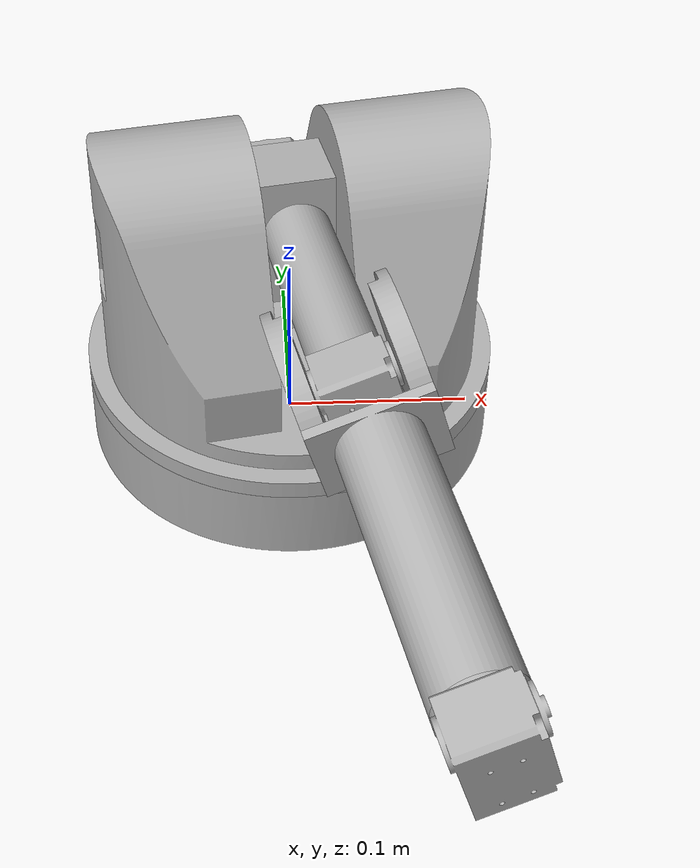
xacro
<?xml version="1.0" ?>
<robot name="test_assembly3" xmlns:xacro="http://www.ros.org/wiki/xacro">

<xacro:include filename="$(find test_assembly3_description)/urdf/materials.xacro" />
<xacro:include filename="$(find test_assembly3_description)/urdf/test_assembly3.trans" />
<xacro:include filename="$(find test_assembly3_description)/urdf/test_assembly3.gazebo" />
<link name="base_link">
  <inertial>
    <origin xyz="-0.00040810804018468253 -3.552713678800501e-17 0.016706580181223032" rpy="0 0 0"/>
    <mass value="6.935188631739772"/>
    <inertia ixx="0.028142" iyy="0.028238" izz="0.054243" ixy="-0.0" iyz="-0.0" ixz="2.5e-05"/>
  </inertial>
  <visual>
    <origin xyz="0 0 0" rpy="0 0 0"/>
    <geometry>
      <mesh filename="package://test_assembly3_description/meshes/base_link.stl" scale="0.001 0.001 0.001"/>
    </geometry>
    <material name="silver"/>
  </visual>
  <collision>
    <origin xyz="0 0 0" rpy="0 0 0"/>
    <geometry>
      <mesh filename="package://test_assembly3_description/meshes/base_link.stl" scale="0.001 0.001 0.001"/>
    </geometry>
  </collision>
</link>

<link name="motor_base_1">
  <inertial>
    <origin xyz="-0.011944616237443872 -1.1102230246251566e-17 0.016403799171755752" rpy="0 0 0"/>
    <mass value="0.343534365338019"/>
    <inertia ixx="5.5e-05" iyy="9.2e-05" izz="8.2e-05" ixy="-0.0" iyz="0.0" ixz="2e-06"/>
  </inertial>
  <visual>
    <origin xyz="0.0 0.0 -0.015" rpy="0 0 0"/>
    <geometry>
      <mesh filename="package://test_assembly3_description/meshes/motor_base_1.stl" scale="0.001 0.001 0.001"/>
    </geometry>
    <material name="silver"/>
  </visual>
  <collision>
    <origin xyz="0.0 0.0 -0.015" rpy="0 0 0"/>
    <geometry>
      <mesh filename="package://test_assembly3_description/meshes/motor_base_1.stl" scale="0.001 0.001 0.001"/>
    </geometry>
  </collision>
</link>

<link name="base_upperplate_1">
  <inertial>
    <origin xyz="-1.6172448750803435e-16 -3.676205142934621e-17 0.004999999999999949" rpy="0 0 0"/>
    <mass value="1.9420933085410403"/>
    <inertia ixx="0.007942" iyy="0.007942" izz="0.015852" ixy="-0.0" iyz="0.0" ixz="0.0"/>
  </inertial>
  <visual>
    <origin xyz="0.0 0.0 -0.041" rpy="0 0 0"/>
    <geometry>
      <mesh filename="package://test_assembly3_description/meshes/base_upperplate_1.stl" scale="0.001 0.001 0.001"/>
    </geometry>
    <material name="silver"/>
  </visual>
  <collision>
    <origin xyz="0.0 0.0 -0.041" rpy="0 0 0"/>
    <geometry>
      <mesh filename="package://test_assembly3_description/meshes/base_upperplate_1.stl" scale="0.001 0.001 0.001"/>
    </geometry>
  </collision>
</link>

<link name="motor_horn_base_1">
  <inertial>
    <origin xyz="3.138091383686708e-14 5.3428299048114016e-15 0.0019561696415957355" rpy="0 0 0"/>
    <mass value="0.009818206481012393"/>
    <inertia ixx="0.0" iyy="0.0" izz="0.0" ixy="-0.0" iyz="-0.0" ixz="-0.0"/>
  </inertial>
  <visual>
    <origin xyz="0.0 0.0 -0.0475" rpy="0 0 0"/>
    <geometry>
      <mesh filename="package://test_assembly3_description/meshes/motor_horn_base_1.stl" scale="0.001 0.001 0.001"/>
    </geometry>
    <material name="silver"/>
  </visual>
  <collision>
    <origin xyz="0.0 0.0 -0.0475" rpy="0 0 0"/>
    <geometry>
      <mesh filename="package://test_assembly3_description/meshes/motor_horn_base_1.stl" scale="0.001 0.001 0.001"/>
    </geometry>
  </collision>
</link>

<link name="link1_1">
  <inertial>
    <origin xyz="0.0025732999778083376 0.0004387244111267232 0.056987216077853876" rpy="0 0 0"/>
    <mass value="18.830511805272366"/>
    <inertia ixx="0.058102" iyy="0.093565" izz="0.09509" ixy="-0.006227" iyz="-0.00017" ixz="-0.000995"/>
  </inertial>
  <visual>
    <origin xyz="0.0 0.0 -0.051" rpy="0 0 0"/>
    <geometry>
      <mesh filename="package://test_assembly3_description/meshes/link1_1.stl" scale="0.001 0.001 0.001"/>
    </geometry>
    <material name="silver"/>
  </visual>
  <collision>
    <origin xyz="0.0 0.0 -0.051" rpy="0 0 0"/>
    <geometry>
      <mesh filename="package://test_assembly3_description/meshes/link1_1.stl" scale="0.001 0.001 0.001"/>
    </geometry>
  </collision>
</link>

<link name="motor_fix_link1_1">
  <inertial>
    <origin xyz="0.00030684703129734217 0.012479258727237364 -0.028250000006648762" rpy="0 0 0"/>
    <mass value="0.0746710896046194"/>
    <inertia ixx="5.7e-05" iyy="3.7e-05" izz="2.1e-05" ixy="3e-06" iyz="-0.0" ixz="0.0"/>
  </inertial>
  <visual>
    <origin xyz="0.023374 0.016412 -0.15725" rpy="0 0 0"/>
    <geometry>
      <mesh filename="package://test_assembly3_description/meshes/motor_fix_link1_1.stl" scale="0.001 0.001 0.001"/>
    </geometry>
    <material name="silver"/>
  </visual>
  <collision>
    <origin xyz="0.023374 0.016412 -0.15725" rpy="0 0 0"/>
    <geometry>
      <mesh filename="package://test_assembly3_description/meshes/motor_fix_link1_1.stl" scale="0.001 0.001 0.001"/>
    </geometry>
  </collision>
</link>

<link name="motor_link1_1">
  <inertial>
    <origin xyz="-0.01643475104619082 0.008357164343897322 -0.019944616237441898" rpy="0 0 0"/>
    <mass value="0.343534365338019"/>
    <inertia ixx="8.2e-05" iyy="9.2e-05" izz="5.5e-05" ixy="-2e-06" iyz="0.0" ixz="2e-06"/>
  </inertial>
  <visual>
    <origin xyz="0.023584 0.01518 -0.149" rpy="0 0 0"/>
    <geometry>
      <mesh filename="package://test_assembly3_description/meshes/motor_link1_1.stl" scale="0.001 0.001 0.001"/>
    </geometry>
    <material name="silver"/>
  </visual>
  <collision>
    <origin xyz="0.023584 0.01518 -0.149" rpy="0 0 0"/>
    <geometry>
      <mesh filename="package://test_assembly3_description/meshes/motor_link1_1.stl" scale="0.001 0.001 0.001"/>
    </geometry>
  </collision>
</link>

<link name="motor_horn_link1_1">
  <inertial>
    <origin xyz="0.001928838316534058 0.00032915162363787026 -2.9781732635569824e-14" rpy="0 0 0"/>
    <mass value="0.009818206481012393"/>
    <inertia ixx="0.0" iyy="0.0" izz="0.0" ixy="0.0" iyz="-0.0" ixz="0.0"/>
  </inertial>
  <visual>
    <origin xyz="0.024152 0.004118 -0.141" rpy="0 0 0"/>
    <geometry>
      <mesh filename="package://test_assembly3_description/meshes/motor_horn_link1_1.stl" scale="0.001 0.001 0.001"/>
    </geometry>
    <material name="silver"/>
  </visual>
  <collision>
    <origin xyz="0.024152 0.004118 -0.141" rpy="0 0 0"/>
    <geometry>
      <mesh filename="package://test_assembly3_description/meshes/motor_horn_link1_1.stl" scale="0.001 0.001 0.001"/>
    </geometry>
  </collision>
</link>

<link name="link2_1">
  <inertial>
    <origin xyz="0.019445684169900824 0.0049421246241596346 -0.007216194487520228" rpy="0 0 0"/>
    <mass value="0.7710253547086547"/>
    <inertia ixx="0.000627" iyy="0.000555" izz="0.000342" ixy="1.3e-05" iyz="-2.8e-05" ixz="5e-06"/>
  </inertial>
  <visual>
    <origin xyz="0.020701 0.003529 -0.141" rpy="0 0 0"/>
    <geometry>
      <mesh filename="package://test_assembly3_description/meshes/link2_1.stl" scale="0.001 0.001 0.001"/>
    </geometry>
    <material name="silver"/>
  </visual>
  <collision>
    <origin xyz="0.020701 0.003529 -0.141" rpy="0 0 0"/>
    <geometry>
      <mesh filename="package://test_assembly3_description/meshes/link2_1.stl" scale="0.001 0.001 0.001"/>
    </geometry>
  </collision>
</link>

<link name="motor_link2_1">
  <inertial>
    <origin xyz="0.008662950578340189 0.014639969529453012 -0.021174389295863544" rpy="0 0 0"/>
    <mass value="0.343534365338019"/>
    <inertia ixx="9.2e-05" iyy="8.2e-05" izz="5.6e-05" ixy="2e-06" iyz="-4e-06" ixz="1e-06"/>
  </inertial>
  <visual>
    <origin xyz="0.015263 -0.018122 -0.147219" rpy="0 0 0"/>
    <geometry>
      <mesh filename="package://test_assembly3_description/meshes/motor_link2_1.stl" scale="0.001 0.001 0.001"/>
    </geometry>
    <material name="silver"/>
  </visual>
  <collision>
    <origin xyz="0.015263 -0.018122 -0.147219" rpy="0 0 0"/>
    <geometry>
      <mesh filename="package://test_assembly3_description/meshes/motor_link2_1.stl" scale="0.001 0.001 0.001"/>
    </geometry>
  </collision>
</link>

<link name="motor_horn_link2_1">
  <inertial>
    <origin xyz="0.00032765071508794597 -0.0019203725058804764 0.00017290455466656418" rpy="0 0 0"/>
    <mass value="0.009818206481012393"/>
    <inertia ixx="0.0" iyy="0.0" izz="0.0" ixy="-0.0" iyz="-0.0" ixz="0.0"/>
  </inertial>
  <visual>
    <origin xyz="0.004083 -0.017997 -0.139365" rpy="0 0 0"/>
    <geometry>
      <mesh filename="package://test_assembly3_description/meshes/motor_horn_link2_1.stl" scale="0.001 0.001 0.001"/>
    </geometry>
    <material name="silver"/>
  </visual>
  <collision>
    <origin xyz="0.004083 -0.017997 -0.139365" rpy="0 0 0"/>
    <geometry>
      <mesh filename="package://test_assembly3_description/meshes/motor_horn_link2_1.stl" scale="0.001 0.001 0.001"/>
    </geometry>
  </collision>
</link>

<link name="link3_1">
  <inertial>
    <origin xyz="0.013239975355927275 -0.07765762547143412 0.0069898533176015465" rpy="0 0 0"/>
    <mass value="0.5987936073400725"/>
    <inertia ixx="0.001339" iyy="0.000182" izz="0.001364" ixy="0.000203" iyz="0.000107" ixz="-1.8e-05"/>
  </inertial>
  <visual>
    <origin xyz="0.003497 -0.014561 -0.139674" rpy="0 0 0"/>
    <geometry>
      <mesh filename="package://test_assembly3_description/meshes/link3_1.stl" scale="0.001 0.001 0.001"/>
    </geometry>
    <material name="silver"/>
  </visual>
  <collision>
    <origin xyz="0.003497 -0.014561 -0.139674" rpy="0 0 0"/>
    <geometry>
      <mesh filename="package://test_assembly3_description/meshes/link3_1.stl" scale="0.001 0.001 0.001"/>
    </geometry>
  </collision>
</link>

<link name="motor_fix_link3_1">
  <inertial>
    <origin xyz="0.0004189395772044094 -0.0024550470280885195 0.00022061953423679892" rpy="0 0 0"/>
    <mass value="0.04869876038361437"/>
    <inertia ixx="5e-06" iyy="1e-05" izz="5e-06" ixy="-1e-06" iyz="-0.0" ixz="0.0"/>
  </inertial>
  <visual>
    <origin xyz="-0.023288 0.142546 -0.153815" rpy="0 0 0"/>
    <geometry>
      <mesh filename="package://test_assembly3_description/meshes/motor_fix_link3_1.stl" scale="0.001 0.001 0.001"/>
    </geometry>
    <material name="silver"/>
  </visual>
  <collision>
    <origin xyz="-0.023288 0.142546 -0.153815" rpy="0 0 0"/>
    <geometry>
      <mesh filename="package://test_assembly3_description/meshes/motor_fix_link3_1.stl" scale="0.001 0.001 0.001"/>
    </geometry>
  </collision>
</link>

<link name="motor_link3_1">
  <inertial>
    <origin xyz="0.009747847862622745 -0.013288975421585802 -0.004874357044772154" rpy="0 0 0"/>
    <mass value="0.343534365338019"/>
    <inertia ixx="7.9e-05" iyy="9.2e-05" izz="5.9e-05" ixy="-2e-06" iyz="-2e-06" ixz="9e-06"/>
  </inertial>
  <visual>
    <origin xyz="-0.015046 0.148117 -0.164112" rpy="0 0 0"/>
    <geometry>
      <mesh filename="package://test_assembly3_description/meshes/motor_link3_1.stl" scale="0.001 0.001 0.001"/>
    </geometry>
    <material name="silver"/>
  </visual>
  <collision>
    <origin xyz="-0.015046 0.148117 -0.164112" rpy="0 0 0"/>
    <geometry>
      <mesh filename="package://test_assembly3_description/meshes/motor_link3_1.stl" scale="0.001 0.001 0.001"/>
    </geometry>
  </collision>
</link>

<link name="motor_horn_link3_1">
  <inertial>
    <origin xyz="0.001846190741949083 0.0003631136075204211 0.0005343164895944552" rpy="0 0 0"/>
    <mass value="0.009818206481012393"/>
    <inertia ixx="0.0" iyy="0.0" izz="0.0" ixy="0.0" iyz="0.0" ixz="0.0"/>
  </inertial>
  <visual>
    <origin xyz="-0.036587 0.15797 -0.175077" rpy="0 0 0"/>
    <geometry>
      <mesh filename="package://test_assembly3_description/meshes/motor_horn_link3_1.stl" scale="0.001 0.001 0.001"/>
    </geometry>
    <material name="silver"/>
  </visual>
  <collision>
    <origin xyz="-0.036587 0.15797 -0.175077" rpy="0 0 0"/>
    <geometry>
      <mesh filename="package://test_assembly3_description/meshes/motor_horn_link3_1.stl" scale="0.001 0.001 0.001"/>
    </geometry>
  </collision>
</link>

<link name="link4_1">
  <inertial>
    <origin xyz="-0.0077543681654866844 -0.05206543157132765 -0.0073986661691151645" rpy="0 0 0"/>
    <mass value="1.2762304594175278"/>
    <inertia ixx="0.00437" iyy="0.001044" izz="0.004624" ixy="0.000731" iyz="-0.00017" ixz="2e-06"/>
  </inertial>
  <visual>
    <origin xyz="-0.03989 0.15732 -0.176033" rpy="0 0 0"/>
    <geometry>
      <mesh filename="package://test_assembly3_description/meshes/link4_1.stl" scale="0.001 0.001 0.001"/>
    </geometry>
    <material name="silver"/>
  </visual>
  <collision>
    <origin xyz="-0.03989 0.15732 -0.176033" rpy="0 0 0"/>
    <geometry>
      <mesh filename="package://test_assembly3_description/meshes/link4_1.stl" scale="0.001 0.001 0.001"/>
    </geometry>
  </collision>
</link>

<link name="motor_link4_1">
  <inertial>
    <origin xyz="-0.0012473361103707906 -0.014378100181126507 -0.010070029629298621" rpy="0 0 0"/>
    <mass value="0.343534365338019"/>
    <inertia ixx="8e-05" iyy="9.2e-05" izz="5.9e-05" ixy="-3e-06" iyz="3e-06" ixz="8e-06"/>
  </inertial>
  <visual>
    <origin xyz="-0.060395 0.332013 -0.17623" rpy="0 0 0"/>
    <geometry>
      <mesh filename="package://test_assembly3_description/meshes/motor_link4_1.stl" scale="0.001 0.001 0.001"/>
    </geometry>
    <material name="silver"/>
  </visual>
  <collision>
    <origin xyz="-0.060395 0.332013 -0.17623" rpy="0 0 0"/>
    <geometry>
      <mesh filename="package://test_assembly3_description/meshes/motor_link4_1.stl" scale="0.001 0.001 0.001"/>
    </geometry>
  </collision>
</link>

<link name="motor_fix_link4_1">
  <inertial>
    <origin xyz="0.0005128437509933706 -0.0024438967841333703 -0.00011117173261870894" rpy="0 0 0"/>
    <mass value="0.04869876038361437"/>
    <inertia ixx="5e-06" iyy="1e-05" izz="5e-06" ixy="-1e-06" iyz="0.0" ixz="-0.0"/>
  </inertial>
  <visual>
    <origin xyz="-0.056813 0.327062 -0.163282" rpy="0 0 0"/>
    <geometry>
      <mesh filename="package://test_assembly3_description/meshes/motor_fix_link4_1.stl" scale="0.001 0.001 0.001"/>
    </geometry>
    <material name="silver"/>
  </visual>
  <collision>
    <origin xyz="-0.056813 0.327062 -0.163282" rpy="0 0 0"/>
    <geometry>
      <mesh filename="package://test_assembly3_description/meshes/motor_fix_link4_1.stl" scale="0.001 0.001 0.001"/>
    </geometry>
  </collision>
</link>

<link name="motor_horn_link4_1">
  <inertial>
    <origin xyz="0.0018460148745002847 0.00036338533989188626 0.0005339532463921881" rpy="0 0 0"/>
    <mass value="0.009818206481012393"/>
    <inertia ixx="0.0" iyy="0.0" izz="0.0" ixy="0.0" iyz="0.0" ixz="0.0"/>
  </inertial>
  <visual>
    <origin xyz="-0.071249 0.344576 -0.182036" rpy="0 0 0"/>
    <geometry>
      <mesh filename="package://test_assembly3_description/meshes/motor_horn_link4_1.stl" scale="0.001 0.001 0.001"/>
    </geometry>
    <material name="silver"/>
  </visual>
  <collision>
    <origin xyz="-0.071249 0.344576 -0.182036" rpy="0 0 0"/>
    <geometry>
      <mesh filename="package://test_assembly3_description/meshes/motor_horn_link4_1.stl" scale="0.001 0.001 0.001"/>
    </geometry>
  </collision>
</link>

<joint name="Rigid 1" type="fixed">
  <origin xyz="0.0 0.0 0.015" rpy="0 0 0"/>
  <parent link="base_link"/>
  <child link="motor_base_1"/>
</joint>

<joint name="Rigid 2" type="fixed">
  <origin xyz="0.0 0.0 0.041" rpy="0 0 0"/>
  <parent link="base_link"/>
  <child link="base_upperplate_1"/>
</joint>

<joint name="Revolute 3" type="continuous">
  <origin xyz="0.0 0.0 0.0325" rpy="0 0 0"/>
  <parent link="motor_base_1"/>
  <child link="motor_horn_base_1"/>
  <axis xyz="0.0 0.0 1.0"/>
</joint>

<joint name="Rigid 4" type="fixed">
  <origin xyz="0.0 0.0 0.0035" rpy="0 0 0"/>
  <parent link="motor_horn_base_1"/>
  <child link="link1_1"/>
</joint>

<joint name="Rigid 5" type="fixed">
  <origin xyz="-0.023374 -0.016412 0.10625" rpy="0 0 0"/>
  <parent link="link1_1"/>
  <child link="motor_fix_link1_1"/>
</joint>

<joint name="Rigid 6" type="fixed">
  <origin xyz="-0.00021 0.001232 -0.00825" rpy="0 0 0"/>
  <parent link="motor_fix_link1_1"/>
  <child link="motor_link1_1"/>
</joint>

<joint name="Revolute 7" type="continuous">
  <origin xyz="-0.000568 0.011062 -0.008" rpy="0 0 0"/>
  <parent link="motor_link1_1"/>
  <child link="motor_horn_link1_1"/>
  <axis xyz="0.985776 0.168066 0.0"/>
</joint>

<joint name="Rigid 8" type="fixed">
  <origin xyz="0.003451 0.000589 0.0" rpy="0 0 0"/>
  <parent link="motor_horn_link1_1"/>
  <child link="link2_1"/>
</joint>

<joint name="Rigid 9" type="fixed">
  <origin xyz="0.005438 0.021651 0.006219" rpy="0 0 0"/>
  <parent link="link2_1"/>
  <child link="motor_link2_1"/>
</joint>

<joint name="Revolute 10" type="continuous">
  <origin xyz="0.01118 -0.000125 -0.007854" rpy="0 0 0"/>
  <parent link="motor_link2_1"/>
  <child link="motor_horn_link2_1"/>
  <axis xyz="0.167408 -0.981919 0.088377"/>
</joint>

<joint name="Rigid 12" type="fixed">
  <origin xyz="0.000586 -0.003436 0.000309" rpy="0 0 0"/>
  <parent link="motor_horn_link2_1"/>
  <child link="link3_1"/>
</joint>

<joint name="Rigid 13" type="fixed">
  <origin xyz="0.026785 -0.157107 0.014141" rpy="0 0 0"/>
  <parent link="link3_1"/>
  <child link="motor_fix_link3_1"/>
</joint>

<joint name="Rigid 14" type="fixed">
  <origin xyz="-0.008242 -0.005571 0.010297" rpy="0 0 0"/>
  <parent link="motor_fix_link3_1"/>
  <child link="motor_link3_1"/>
</joint>

<joint name="Revolute 15" type="continuous">
  <origin xyz="0.021541 -0.009853 0.010965" rpy="0 0 0"/>
  <parent link="motor_link3_1"/>
  <child link="motor_horn_link3_1"/>
  <axis xyz="0.943896 0.185516 0.27321"/>
</joint>

<joint name="Rigid 16" type="fixed">
  <origin xyz="0.003303 0.00065 0.000956" rpy="0 0 0"/>
  <parent link="motor_horn_link3_1"/>
  <child link="link4_1"/>
</joint>

<joint name="Rigid 18" type="fixed">
  <origin xyz="0.003582 -0.004951 0.012948" rpy="0 0 0"/>
  <parent link="motor_fix_link4_1"/>
  <child link="motor_link4_1"/>
</joint>

<joint name="Rigid 19" type="fixed">
  <origin xyz="0.016923 -0.169742 -0.012751" rpy="0 0 0"/>
  <parent link="link4_1"/>
  <child link="motor_fix_link4_1"/>
</joint>

<joint name="Revolute 20" type="continuous">
  <origin xyz="0.010854 -0.012563 0.005806" rpy="0 0 0"/>
  <parent link="motor_link4_1"/>
  <child link="motor_horn_link4_1"/>
  <axis xyz="0.943896 0.185516 0.27321"/>
</joint>

</robot>

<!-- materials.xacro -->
<robot name="test_assembly3" xmlns:xacro="http://www.ros.org/wiki/xacro" >

<material name="silver">
  <color rgba="0.700 0.700 0.700 1.000"/>
</material>

</robot>

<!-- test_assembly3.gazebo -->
<robot name="test_assembly3" xmlns:xacro="http://www.ros.org/wiki/xacro" >

<xacro:property name="body_color" value="Gazebo/Silver" />

<gazebo>
  <plugin name="control" filename="libgazebo_ros_control.so"/>
</gazebo>
<gazebo reference="base_link">
  <material>${body_color}</material>
  <mu1>0.2</mu1>
  <mu2>0.2</mu2>
  <selfCollide>true</selfCollide>
  <gravity>true</gravity>
</gazebo>

<gazebo reference="motor_base_1">
  <material>${body_color}</material>
  <mu1>0.2</mu1>
  <mu2>0.2</mu2>
  <selfCollide>true</selfCollide>
</gazebo>

<gazebo reference="base_upperplate_1">
  <material>${body_color}</material>
  <mu1>0.2</mu1>
  <mu2>0.2</mu2>
  <selfCollide>true</selfCollide>
</gazebo>

<gazebo reference="motor_horn_base_1">
  <material>${body_color}</material>
  <mu1>0.2</mu1>
  <mu2>0.2</mu2>
  <selfCollide>true</selfCollide>
</gazebo>

<gazebo reference="link1_1">
  <material>${body_color}</material>
  <mu1>0.2</mu1>
  <mu2>0.2</mu2>
  <selfCollide>true</selfCollide>
</gazebo>

<gazebo reference="motor_fix_link1_1">
  <material>${body_color}</material>
  <mu1>0.2</mu1>
  <mu2>0.2</mu2>
  <selfCollide>true</selfCollide>
</gazebo>

<gazebo reference="motor_link1_1">
  <material>${body_color}</material>
  <mu1>0.2</mu1>
  <mu2>0.2</mu2>
  <selfCollide>true</selfCollide>
</gazebo>

<gazebo reference="motor_horn_link1_1">
  <material>${body_color}</material>
  <mu1>0.2</mu1>
  <mu2>0.2</mu2>
  <selfCollide>true</selfCollide>
</gazebo>

<gazebo reference="link2_1">
  <material>${body_color}</material>
  <mu1>0.2</mu1>
  <mu2>0.2</mu2>
  <selfCollide>true</selfCollide>
</gazebo>

<gazebo reference="motor_link2_1">
  <material>${body_color}</material>
  <mu1>0.2</mu1>
  <mu2>0.2</mu2>
  <selfCollide>true</selfCollide>
</gazebo>

<gazebo reference="motor_horn_link2_1">
  <material>${body_color}</material>
  <mu1>0.2</mu1>
  <mu2>0.2</mu2>
  <selfCollide>true</selfCollide>
</gazebo>

<gazebo reference="link3_1">
  <material>${body_color}</material>
  <mu1>0.2</mu1>
  <mu2>0.2</mu2>
  <selfCollide>true</selfCollide>
</gazebo>

<gazebo reference="motor_fix_link3_1">
  <material>${body_color}</material>
  <mu1>0.2</mu1>
  <mu2>0.2</mu2>
  <selfCollide>true</selfCollide>
</gazebo>

<gazebo reference="motor_link3_1">
  <material>${body_color}</material>
  <mu1>0.2</mu1>
  <mu2>0.2</mu2>
  <selfCollide>true</selfCollide>
</gazebo>

<gazebo reference="motor_horn_link3_1">
  <material>${body_color}</material>
  <mu1>0.2</mu1>
  <mu2>0.2</mu2>
  <selfCollide>true</selfCollide>
</gazebo>

<gazebo reference="link4_1">
  <material>${body_color}</material>
  <mu1>0.2</mu1>
  <mu2>0.2</mu2>
  <selfCollide>true</selfCollide>
</gazebo>

<gazebo reference="motor_link4_1">
  <material>${body_color}</material>
  <mu1>0.2</mu1>
  <mu2>0.2</mu2>
  <selfCollide>true</selfCollide>
</gazebo>

<gazebo reference="motor_fix_link4_1">
  <material>${body_color}</material>
  <mu1>0.2</mu1>
  <mu2>0.2</mu2>
  <selfCollide>true</selfCollide>
</gazebo>

<gazebo reference="motor_horn_link4_1">
  <material>${body_color}</material>
  <mu1>0.2</mu1>
  <mu2>0.2</mu2>
  <selfCollide>true</selfCollide>
</gazebo>

</robot>
